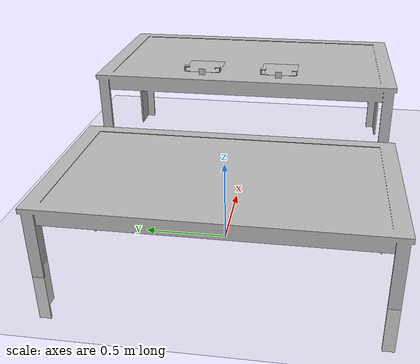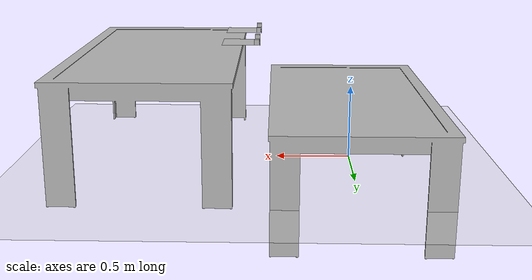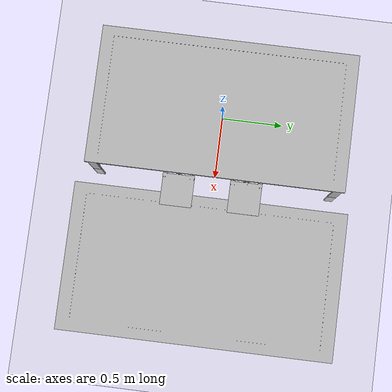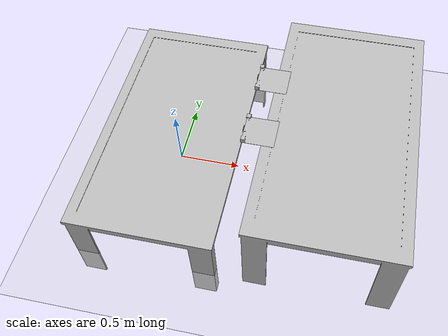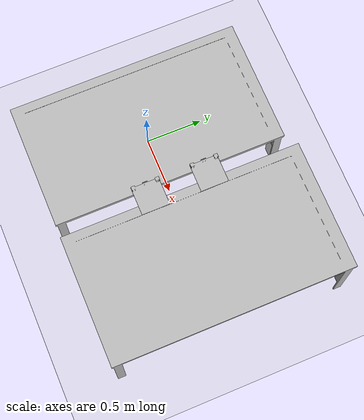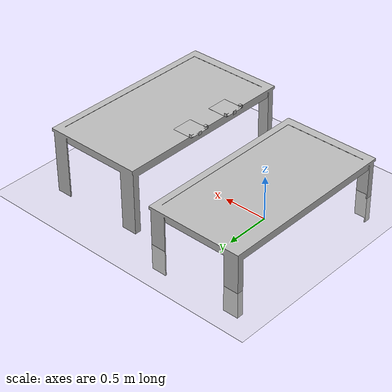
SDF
<sdf version="1.7">
 <world name="default">
  <light name="sun" type="directional">
   <pose>0 0 10 0 -0 0</pose>
   <diffuse>0.8 0.8 0.8 1</diffuse>
   <specular>0.2 0.2 0.2 1</specular>
   <attenuation>
    <range>1000</range>
    <constant>0.9</constant>
    <linear>0.01</linear>
    <quadratic>0.001</quadratic>
   </attenuation>
   <direction>-0.5 0.1 -0.9</direction>
   <spot><inner_angle>0</inner_angle><outer_angle>0</outer_angle><falloff>0</falloff></spot>
  </light>
  <model name="ground_plane">
   <static>1</static>
   <link name="link">
    <collision name="collision">
     <geometry><plane><normal>0 0 1</normal><size>100 100</size></plane></geometry>
     <surface>
      <contact><collide_bitmask>65535</collide_bitmask></contact>
      <friction><ode><mu>100</mu><mu2>50</mu2></ode></friction>
     </surface>
    </collision>
    <visual name="visual">
     <cast_shadows>0</cast_shadows>
     <geometry><plane><normal>0 0 1</normal><size>100 100</size></plane></geometry>
     <material>
      <script><uri>file://media/materials/scripts/gazebo.material</uri><name>Gazebo/Grey</name></script>
     </material>
    </visual>
   </link>
  </model>
  <gravity>0 0 -9.8</gravity>
  <magnetic_field>6e-06 2.3e-05 -4.2e-05</magnetic_field>
  <atmosphere type="adiabatic"/>
  <physics type="ode">
   <max_step_size>0.001</max_step_size>
   <real_time_factor>1</real_time_factor>
   <real_time_update_rate>1000</real_time_update_rate>
  </physics>
  <scene><ambient>0.4 0.4 0.4 1</ambient><background>0.7 0.7 0.7 1</background><shadows>1</shadows></scene>
  <spherical_coordinates>
   <surface_model>EARTH_WGS84</surface_model>
   <latitude_deg>0</latitude_deg>
   <longitude_deg>0</longitude_deg>
   <elevation>0</elevation>
   <heading_deg>0</heading_deg>
  </spherical_coordinates>
  <model name="printerTable">
   <static>1</static>
   <link name="base_link">
    <visual name="base_visual">
     <geometry><mesh><uri>model://printerTable/meshes/printerTable.dae</uri><scale>1 1 1</scale></mesh></geometry>
    </visual>
    <collision name="base_collision">
     <geometry><mesh><uri>model://printerTable/meshes/printerTable.dae</uri></mesh></geometry>
    </collision>
    <inertial>
     <inertia><ixx>1</ixx><ixy>0</ixy><ixz>0</ixz><iyy>1</iyy><iyz>0</iyz><izz>1</izz></inertia>
     <mass>1</mass>
    </inertial>
   </link>
   <pose>1.3 0 0 0 -0 0</pose>
  </model>
  <model name="printerTable_0">
   <static>1</static>
   <link name="base_link">
    <visual name="base_visual">
     <geometry><mesh><uri>model://printerTable/meshes/printerTable.dae</uri><scale>1 1 1</scale></mesh></geometry>
    </visual>
    <collision name="base_collision">
     <geometry><mesh><uri>model://printerTable/meshes/printerTable.dae</uri></mesh></geometry>
    </collision>
    <inertial>
     <inertia><ixx>1</ixx><ixy>0</ixy><ixz>0</ixz><iyy>1</iyy><iyz>0</iyz><izz>1</izz></inertia>
     <mass>1</mass>
    </inertial>
   </link>
   <pose>0 0 -0.3 0 -0 0</pose>
  </model>
  <model name="ender3bed0">
   <static>1</static>
   <link name="link">
    <collision name="collision">
     <pose>0 0 0 0 0 -1.5708</pose>
     <geometry><mesh><scale>1 1 1</scale><uri>model://printbed0/meshes/moddedprintbed.dae</uri></mesh></geometry>
    </collision>
    <visual name="visual">
     <pose>0 0 0 0 0 -1.5708</pose>
     <geometry><mesh><scale>1 1 1</scale><uri>model://printbed0/meshes/moddedprintbed.dae</uri></mesh></geometry>
    </visual>
    <inertial>
     <inertia><ixx>1</ixx><ixy>0</ixy><ixz>0</ixz><iyy>1</iyy><iyz>0</iyz><izz>1</izz></inertia>
     <mass>1</mass>
    </inertial>
   </link>
   <pose>0.72 0.245 0.85 0 -0 0</pose>
  </model>
  <light name="user_point_light_0" type="point">
   <pose>-0.133885 -0.036144 1 0 -0 0</pose>
   <diffuse>0.5 0.5 0.5 1</diffuse>
   <specular>0.1 0.1 0.1 1</specular>
   <attenuation>
    <range>20</range>
    <constant>0.5</constant>
    <linear>0.01</linear>
    <quadratic>0.001</quadratic>
   </attenuation>
   <cast_shadows>0</cast_shadows>
   <direction>0 0 -1</direction>
   <spot><inner_angle>0</inner_angle><outer_angle>0</outer_angle><falloff>0</falloff></spot>
  </light>
  <model name="ender3bed1">
   <static>1</static>
   <link name="link">
    <collision name="collision">
     <pose>0 0 0 0 0 -1.5708</pose>
     <geometry><mesh><scale>1 1 1</scale><uri>model://printbed1/meshes/moddedprintbed.dae</uri></mesh></geometry>
    </collision>
    <visual name="visual">
     <pose>0 0 0 0 0 -1.5708</pose>
     <geometry><mesh><scale>1 1 1</scale><uri>model://printbed1/meshes/moddedprintbed.dae</uri></mesh></geometry>
    </visual>
   </link>
   <pose>0.72 -0.255 0.85 0 -0 0</pose>
  </model>
 </world>
</sdf>
